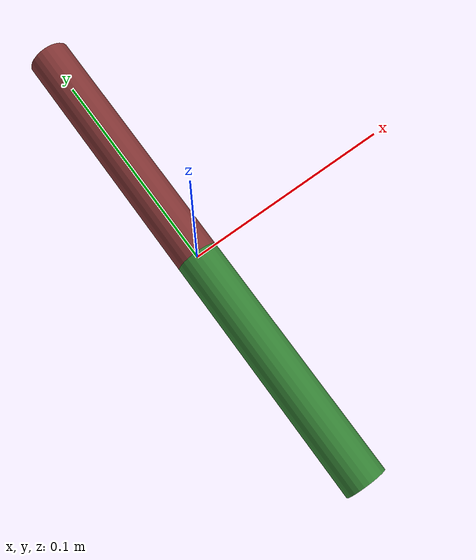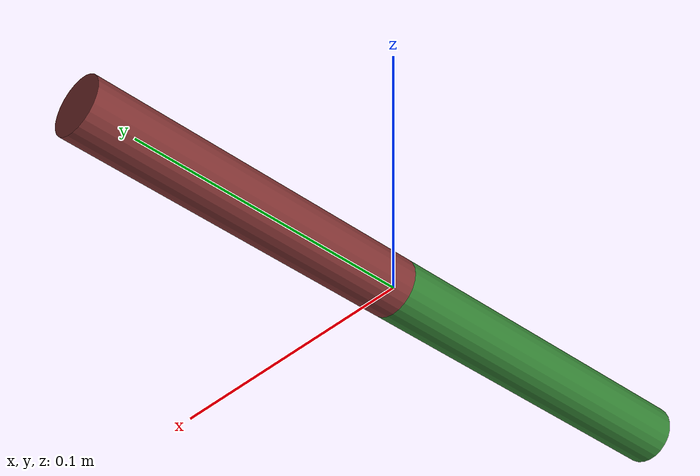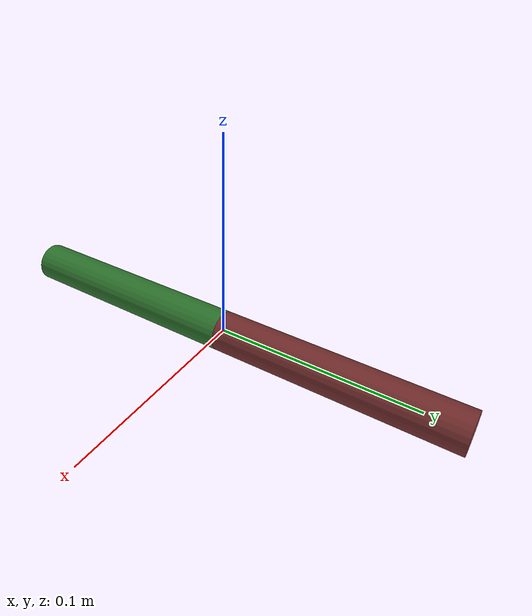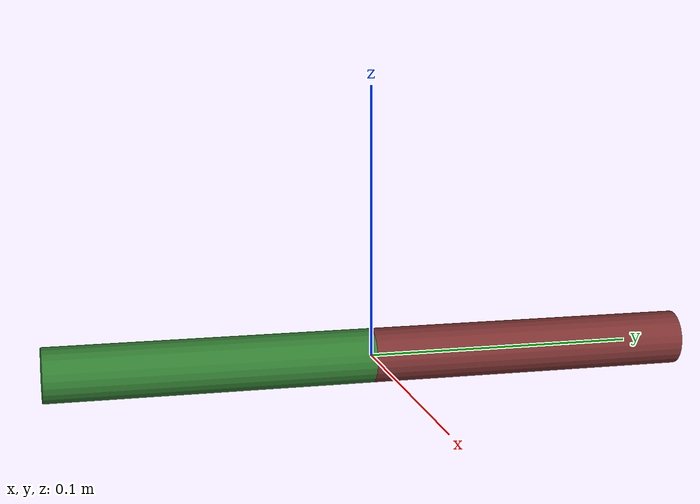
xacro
<?xml version="1.0"?>
<robot xmlns:xacro="http://www.ros.org/wiki/xacro">

    <xacro:property name="cylinder_radius" value="0.01"/>
    <xacro:property name="cylinder_len" value = "0.12"/>
    <!--xacro:property name="pi" value="3.14159"/-->

    <material name="front_material">
        <color rgba="0.5 0.2 0.2 1"/>
    </material>

    <material name="rear_material">
        <color rgba="0.2 0.5 0.2 1"/>
    </material>

    <link name="base"/>

    <link name="front">
        <visual>
            <origin xyz="0 ${cylinder_len/2} 0" rpy="${pi/2} 0 0"/>
            <geometry>
                <cylinder radius="${cylinder_radius}" length="${cylinder_len}"/>
            </geometry>
            <material name="front_material"/>
        </visual>
        <collision>
            <origin xyz="0 ${cylinder_len/2} 0" rpy="${pi/2} 0 0"/>
            <geometry>
                <cylinder radius="${cylinder_radius}" length="${cylinder_len}"/>
            </geometry>
        </collision>
        <inertial>
            <density value="1000.0"/>
        </inertial>
    </link>

    <link name="rear">
        <visual>
            <origin xyz="0 ${cylinder_len/-2} 0" rpy="${pi/2} 0 0"/>
            <geometry>
                <cylinder radius="${cylinder_radius}" length="${cylinder_len}"/>
            </geometry>
            <material name="rear_material"/>
        </visual>
        <collision>
            <origin xyz="0 ${cylinder_len/-2} 0" rpy="${pi/2} 0 0"/>
            <geometry>
                <cylinder radius="${cylinder_radius}" length="${cylinder_len}"/>
            </geometry>
        </collision>
        <inertial>
            <density value="1000.0"/>
        </inertial>
    </link>

    <joint name="front_joint" type="fixed">
        <parent link="base"/>
        <child link="front"/>
    </joint>

    <joint name="rear_joint" type="fixed">
        <parent link="base"/>
        <child link="rear"/>
    </joint>

</robot>
